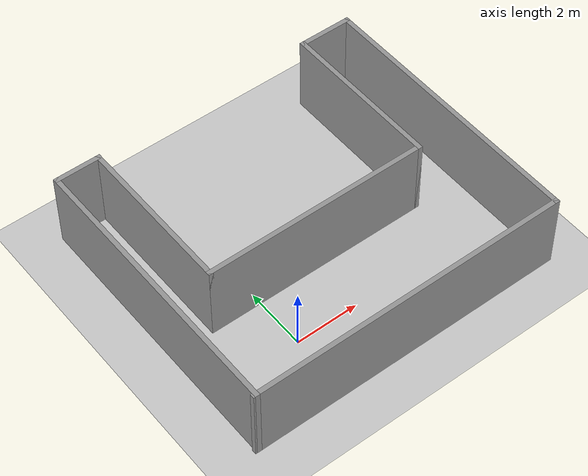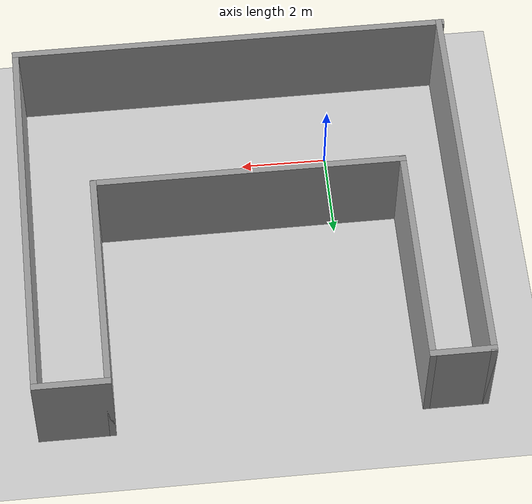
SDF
<sdf version="1.6">
 <world name="default">
  <light name="sun" type="directional">
   <pose>0 0 15 0 -0 0</pose>
   <diffuse>1 1 1 1</diffuse>
   <specular>0.1 0.1 0.1 1</specular>
   <attenuation>
    <range>1000</range>
    <constant>0.9</constant>
    <linear>0.01</linear>
    <quadratic>0.001</quadratic>
   </attenuation>
   <direction>-0.5 0.5 -1</direction>
  </light>
  <model name="ground_plane">
   <static>1</static>
   <link name="link">
    <collision name="collision">
     <geometry><plane><normal>0 0 1</normal><size>100 100</size></plane></geometry>
     <surface><friction><ode><mu>100</mu><mu2>50</mu2></ode></friction></surface>
    </collision>
    <visual name="visual">
     <transparency>1</transparency>
     <cast_shadows>0</cast_shadows>
     <geometry><plane><normal>0 0 1</normal><size>100 100</size></plane></geometry>
     <material>
      <script><uri>file://media/materials/scripts/gazebo.material</uri><name>Gazebo/Grey</name></script>
     </material>
    </visual>
   </link>
  </model>
  <gravity>0 0 -9.8</gravity>
  <magnetic_field>6e-06 2.3e-05 -4.2e-05</magnetic_field>
  <atmosphere type="adiabatic"/>
  <physics name="default_physics" default="0" type="ode">
   <max_step_size>0.001</max_step_size>
   <real_time_factor>1</real_time_factor>
   <real_time_update_rate>1000</real_time_update_rate>
  </physics>
  <scene><ambient>0.4 0.4 0.4 1</ambient><background>0.7 0.7 0.7 1</background><shadows>1</shadows></scene>
  <spherical_coordinates>
   <surface_model>EARTH_WGS84</surface_model>
   <latitude_deg>0</latitude_deg>
   <longitude_deg>0</longitude_deg>
   <elevation>0</elevation>
   <heading_deg>0</heading_deg>
  </spherical_coordinates>
  <model name="building">
   <pose>2.10925 2.3922 0 0 -0 0</pose>
   <link name="Wall_16">
    <collision name="Wall_16_Collision">
     <geometry><box><size>9 0.15 2.5</size></box></geometry>
     <pose>0 0 1.25 0 -0 0</pose>
    </collision>
    <visual name="Wall_16_Visual">
     <pose>0 0 1.25 0 -0 0</pose>
     <geometry><box><size>9 0.15 2.5</size></box></geometry>
     <material>
      <script><uri>file://media/materials/scripts/gazebo.material</uri><name>Gazebo/Grey</name></script>
      <ambient>1 1 1 1</ambient>
     </material>
    </visual>
    <pose>-5 0 0 0 -0 1.5708</pose>
   </link>
   <link name="Wall_17">
    <collision name="Wall_17_Collision">
     <geometry><box><size>1.5 0.15 2.5</size></box></geometry>
     <pose>0 0 1.25 0 -0 0</pose>
    </collision>
    <visual name="Wall_17_Visual">
     <pose>0 0 1.25 0 -0 0</pose>
     <geometry><box><size>1.5 0.15 2.5</size></box></geometry>
     <material>
      <script><uri>file://media/materials/scripts/gazebo.material</uri><name>Gazebo/Grey</name></script>
      <ambient>1 1 1 1</ambient>
     </material>
    </visual>
    <pose>-4.325 4.425 0 0 -0 0</pose>
   </link>
   <link name="Wall_18">
    <collision name="Wall_18_Collision">
     <geometry><box><size>5.25 0.15 2.5</size></box></geometry>
     <pose>0 0 1.25 0 -0 0</pose>
    </collision>
    <visual name="Wall_18_Visual">
     <pose>0 0 1.25 0 -0 0</pose>
     <geometry><box><size>5.25 0.15 2.5</size></box></geometry>
     <material>
      <script><uri>file://media/materials/scripts/gazebo.material</uri><name>Gazebo/Grey</name></script>
      <ambient>1 1 1 1</ambient>
     </material>
    </visual>
    <pose>-3.65 1.875 0 0 0 -1.5708</pose>
   </link>
   <link name="Wall_19">
    <collision name="Wall_19_Collision">
     <geometry><box><size>7.25 0.15 2.5</size></box></geometry>
     <pose>0 0 1.25 0 -0 0</pose>
    </collision>
    <visual name="Wall_19_Visual">
     <pose>0 0 1.25 0 -0 0</pose>
     <geometry><box><size>7.25 0.15 2.5</size></box></geometry>
     <material>
      <script><uri>file://media/materials/scripts/gazebo.material</uri><name>Gazebo/Grey</name></script>
      <ambient>1 1 1 1</ambient>
     </material>
    </visual>
    <pose>-0.1 -0.675 0 0 -0 0</pose>
   </link>
   <link name="Wall_20">
    <collision name="Wall_20_Collision">
     <geometry><box><size>5.25 0.15 2.5</size></box></geometry>
     <pose>0 0 1.25 0 -0 0</pose>
    </collision>
    <visual name="Wall_20_Visual">
     <pose>0 0 1.25 0 -0 0</pose>
     <geometry><box><size>5.25 0.15 2.5</size></box></geometry>
     <material>
      <script><uri>file://media/materials/scripts/gazebo.material</uri><name>Gazebo/Grey</name></script>
      <ambient>1 1 1 1</ambient>
     </material>
    </visual>
    <pose>3.45 1.875 0 0 -0 1.5708</pose>
   </link>
   <link name="Wall_21">
    <collision name="Wall_21_Collision">
     <geometry><box><size>1.75 0.15 2.5</size></box></geometry>
     <pose>0 0 1.25 0 -0 0</pose>
    </collision>
    <visual name="Wall_21_Visual">
     <pose>0 0 1.25 0 -0 0</pose>
     <geometry><box><size>1.75 0.15 2.5</size></box></geometry>
     <material>
      <script><uri>file://media/materials/scripts/gazebo.material</uri><name>Gazebo/Grey</name></script>
      <ambient>1 1 1 1</ambient>
     </material>
    </visual>
    <pose>4.25 4.425 0 0 -0 0</pose>
   </link>
   <link name="Wall_22">
    <collision name="Wall_22_Collision">
     <geometry><box><size>9 0.15 2.5</size></box></geometry>
     <pose>0 0 1.25 0 -0 0</pose>
    </collision>
    <visual name="Wall_22_Visual">
     <pose>0 0 1.25 0 -0 0</pose>
     <geometry><box><size>9 0.15 2.5</size></box></geometry>
     <material>
      <script><uri>file://media/materials/scripts/gazebo.material</uri><name>Gazebo/Grey</name></script>
      <ambient>1 1 1 1</ambient>
     </material>
    </visual>
    <pose>5.05 0 0 0 0 -1.5708</pose>
   </link>
   <link name="Wall_23">
    <collision name="Wall_23_Collision">
     <geometry><box><size>10.25 0.15 2.5</size></box></geometry>
     <pose>0 0 1.25 0 -0 0</pose>
    </collision>
    <visual name="Wall_23_Visual">
     <pose>0 0 1.25 0 -0 0</pose>
     <geometry><box><size>10.25 0.15 2.5</size></box></geometry>
     <material>
      <script><uri>file://media/materials/scripts/gazebo.material</uri><name>Gazebo/Grey</name></script>
      <ambient>1 1 1 1</ambient>
     </material>
    </visual>
    <pose>0 -4.425 0 0 -0 3.14159</pose>
   </link>
   <static>1</static>
  </model>
 </world>
</sdf>
